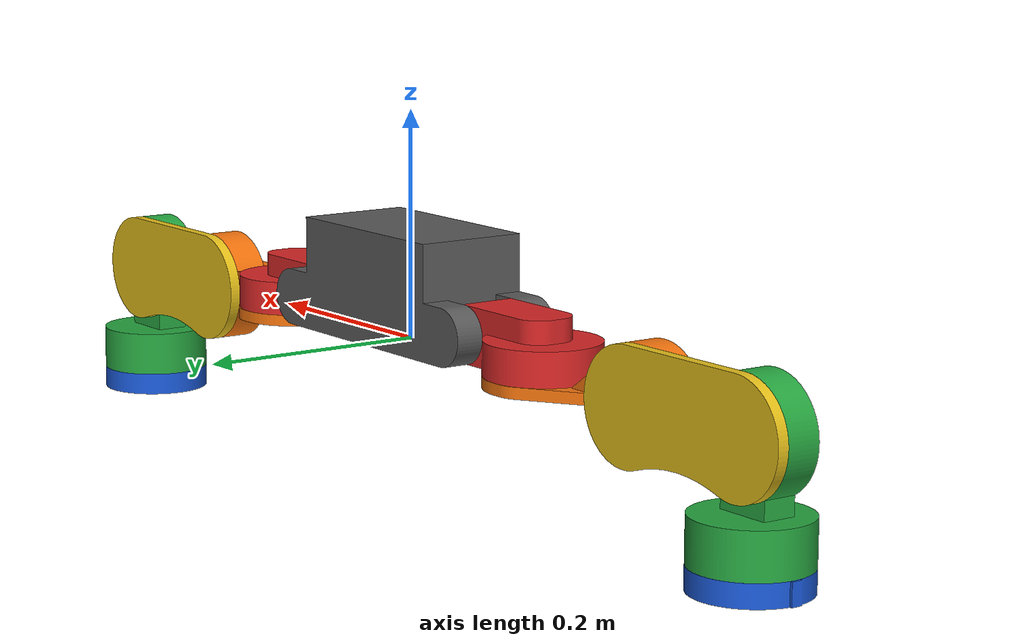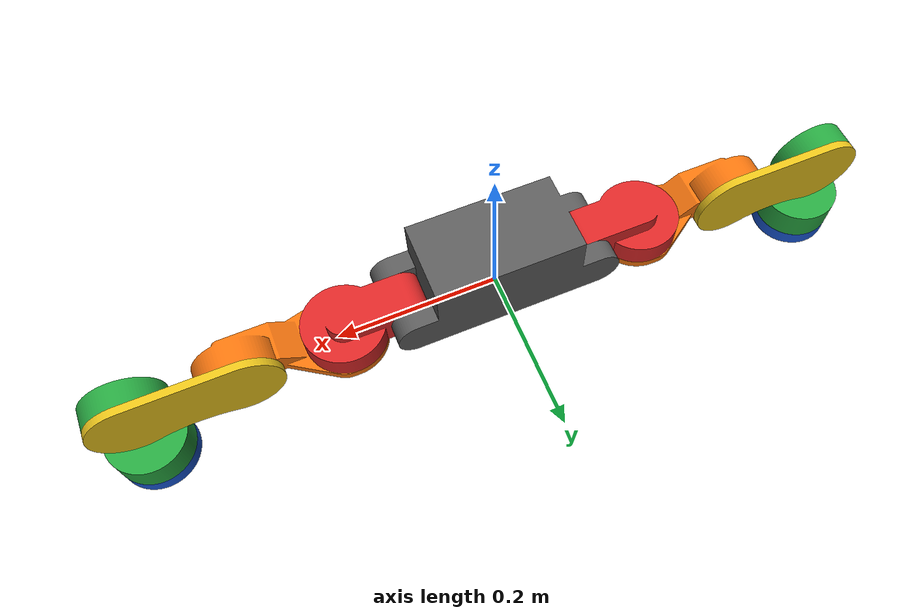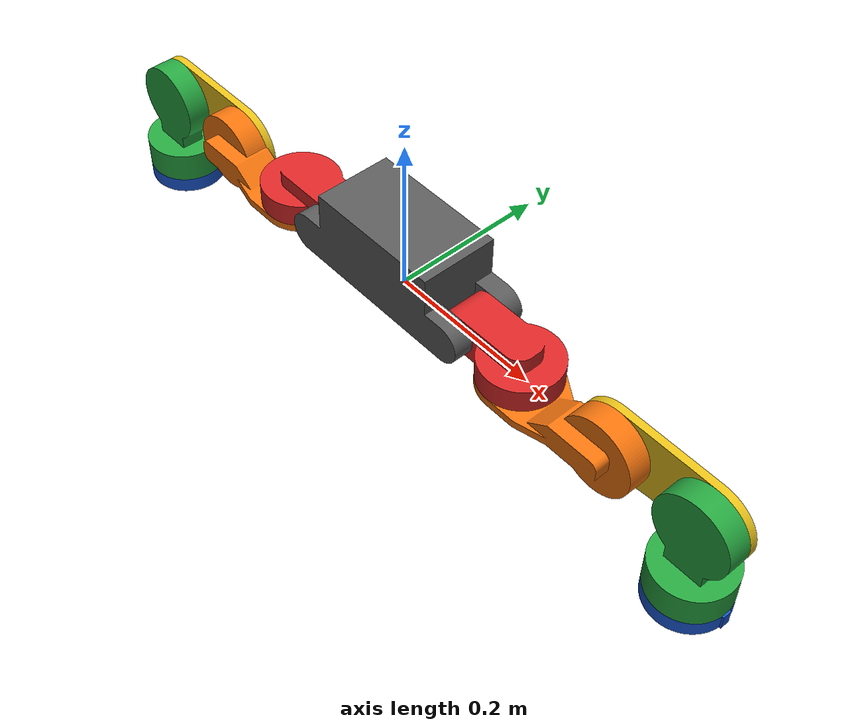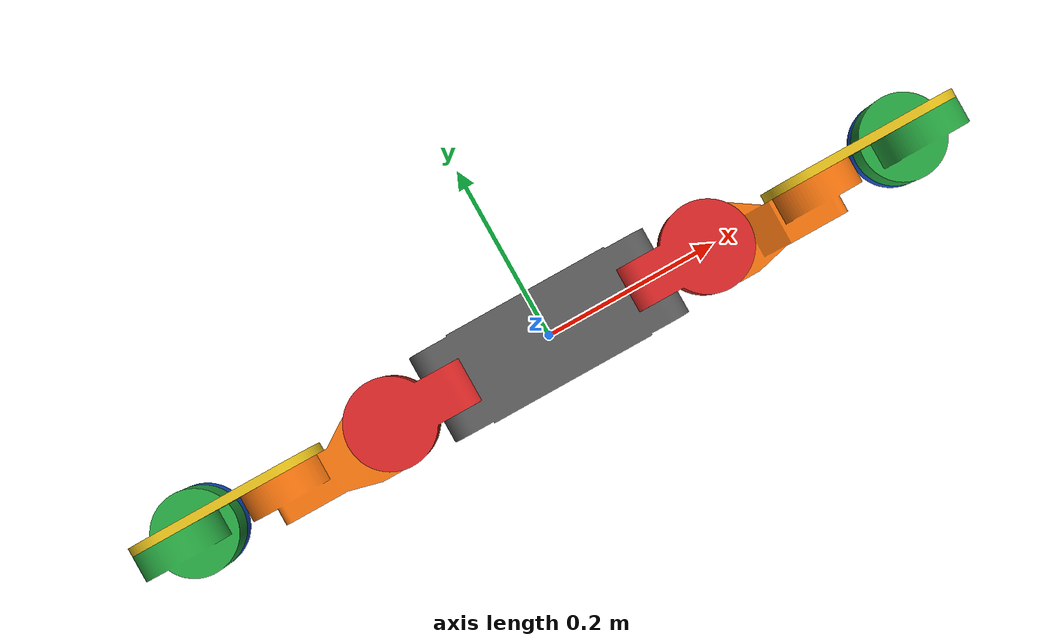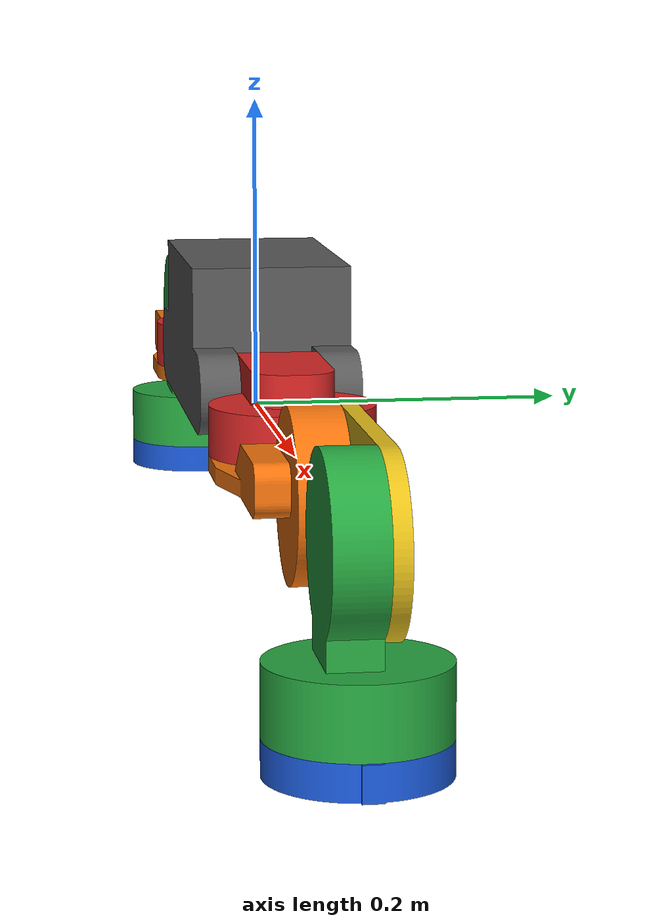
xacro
<?xml version="1.0"?>
<robot xmlns:xacro="http://www.ros.org/wiki/xacro" name="ROBOT_A">
    <xacro:arg name="initial_positions_file" default="initial_positions.yaml" />

    <!-- Import ROBOT_A urdf file -->
    <xacro:include filename="$(find asow_hw_description)/urdf/robot_a.urdf" />

    <!-- Import control_xacro -->
    <xacro:include filename="ROBOT_A.ros2_control.xacro" />

    <xacro:ROBOT_A_ros2_control name="FakeSystem" initial_positions_file="$(arg initial_positions_file)"/>

</robot>

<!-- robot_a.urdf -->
<robot name="ROBOT_A">
    <link name="base_link-v1">
        <inertial>
            <origin xyz="-3.596307012397224e-17 8.99076753099306e-18 0.047242270246655026" rpy="0.0 0.0 0.0" />
            <mass value="15.881921947833751" />
            <inertia ixx="0.02740389878447569" iyy="0.07377866036250164" izz="0.07503453392587439" ixy="-5.135190812746843e-33" iyz="1.0341286076480536e-18" ixz="-2.6983021339128172e-17" />
        </inertial>
        <visual name="base_link-v1_visual">
            <origin xyz="0.0 0.0 0.0" rpy="0.0 0.0 0.0" />
            <geometry>
                <mesh filename="package://asow_hw_description/meshes/base_link-v1.stl" scale="0.001 0.001 0.001" />
            </geometry>
            <material name="base_gray">
                <color rgba="0.35 0.35 0.35 1.0" />
            </material>
        </visual>
        <collision name="base_link-v1_collision">
            <origin xyz="0.0 0.0 0.0" rpy="0.0 0.0 0.0" />
            <geometry>
                <mesh filename="package://asow_hw_description/meshes/base_link-v1.stl" scale="0.001 0.001 0.001" />
            </geometry>
        </collision>
    </link>
    <link name="link_L_1-v1">
        <inertial>
            <origin xyz="-0.05253571632269832 -0.0033336910462764503 0.02499999999999999" rpy="0.0 -0.0 0.0" />
            <mass value="3.2736646506680445" />
            <inertia ixx="0.0020400762789989143" iyy="0.0061380158115020705" izz="0.005276307678153347" ixy="-0.0003628132859911648" iyz="-7.734366831151867e-19" ixz="-2.5868058713368473e-18" />
        </inertial>
        <visual name="link_L_1-v1_visual">
            <origin xyz="0.115 -0.025 0.025" rpy="-1.5707963267948966 -0.0 0.0" />
            <geometry>
                <mesh filename="package://asow_hw_description/meshes/link_L_1-v1.stl" scale="0.001 0.001 0.001" />
            </geometry>
            <material name="pair_1_red">
                <color rgba="0.85 0.15 0.15 1.0" />
            </material>
        </visual>
        <collision name="link_L_1-v1_collision">
            <origin xyz="0.115 -0.025 0.025" rpy="-1.5707963267948966 -0.0 0.0" />
            <geometry>
                <mesh filename="package://asow_hw_description/meshes/link_L_1-v1.stl" scale="0.001 0.001 0.001" />
            </geometry>
        </collision>
    </link>
    <link name="link_L_2-v1">
        <inertial>
            <origin xyz="-0.09566069346579405 -0.007703627484511559 -0.0004539395052395708" rpy="0.0 -0.0 0.0" />
            <mass value="3.118751651857192" />
            <inertia ixx="0.0021196297328528913" iyy="0.01125088261813123" izz="0.010916497110448065" ixy="-0.0003282241890858453" iyz="6.047609300765807e-05" ixz="0.0003456377415323876" />
        </inertial>
        <visual name="link_L_2-v1_visual">
            <origin xyz="0.19 0.0 0.0" rpy="0.0 -0.0 0.0" />
            <geometry>
                <mesh filename="package://asow_hw_description/meshes/link_L_2-v1.stl" scale="0.001 0.001 0.001" />
            </geometry>
            <material name="pair_2_orange">
                <color rgba="0.95 0.45 0.05 1.0" />
            </material>
        </visual>
        <collision name="link_L_2-v1_collision">
            <origin xyz="0.19 0.0 0.0" rpy="0.0 -0.0 0.0" />
            <geometry>
                <mesh filename="package://asow_hw_description/meshes/link_L_2-v1.stl" scale="0.001 0.001 0.001" />
            </geometry>
        </collision>
    </link>
    <link name="link_L_3-v1">
        <inertial>
            <origin xyz="-0.06500000000000007 -0.0018839898977644368 0.005000000000000003" rpy="0.0 -0.0 0.0" />
            <mass value="1.5722002984630519" />
            <inertia ixx="0.001107428869243225" iyy="0.006098519565284705" izz="0.007179745096220214" ixy="8.673617379884035e-19" iyz="-6.776263578034403e-21" ixz="-1.734723475976807e-18" />
        </inertial>
        <visual name="link_L_3-v1_visual">
            <origin xyz="0.32 0.0 -0.01" rpy="1.5707963267948966 -0.0 0.0" />
            <geometry>
                <mesh filename="package://asow_hw_description/meshes/link_L_3-v1.stl" scale="0.001 0.001 0.001" />
            </geometry>
            <material name="pair_3_yellow">
                <color rgba="0.90 0.75 0.10 1.0" />
            </material>
        </visual>
        <collision name="link_L_3-v1_collision">
            <origin xyz="0.32 0.0 -0.01" rpy="1.5707963267948966 -0.0 0.0" />
            <geometry>
                <mesh filename="package://asow_hw_description/meshes/link_L_3-v1.stl" scale="0.001 0.001 0.001" />
            </geometry>
        </collision>
    </link>
    <link name="link_L_4-v1">
        <inertial>
            <origin xyz="7.105427357601002e-17 -0.0459726775744445 0.012234673457824552" rpy="0.0 -0.0 0.0" />
            <mass value="4.459057900496437" />
            <inertia ixx="0.00997852464126306" iyy="0.004449906070845611" izz="0.010991696365970749" ixy="0.0" iyz="-0.00041958244565231355" ixz="-1.3877787807814457e-17" />
        </inertial>
        <visual name="link_L_4-v1_visual">
            <origin xyz="0.45 0.0 0.01" rpy="-1.5707963267948966 -0.0 0.0" />
            <geometry>
                <mesh filename="package://asow_hw_description/meshes/link_L_4-v1.stl" scale="0.001 0.001 0.001" />
            </geometry>
            <material name="pair_4_green">
                <color rgba="0.15 0.65 0.25 1.0" />
            </material>
        </visual>
        <collision name="link_L_4-v1_collision">
            <origin xyz="0.45 0.0 0.01" rpy="-1.5707963267948966 -0.0 0.0" />
            <geometry>
                <mesh filename="package://asow_hw_description/meshes/link_L_4-v1.stl" scale="0.001 0.001 0.001" />
            </geometry>
        </collision>
    </link>
    <link name="link_L_5-v1">
        <inertial>
            <origin xyz="-0.00013481796103853583 -2.324318480288175e-15 0.01" rpy="0.0 -0.0 0.0" />
            <mass value="1.236346146821069" />
            <inertia ixx="0.0008119116187459158" iyy="0.00082035579316736" izz="0.0015498443354586278" ixy="-7.654105120296088e-17" iyz="1.7848833522296184e-19" ixz="-6.938893903907228e-18" />
        </inertial>
        <visual name="link_L_5-v1_visual">
            <origin xyz="0.45 0.0 -0.1" rpy="3.141592653589793 -0.0 0.0" />
            <geometry>
                <mesh filename="package://asow_hw_description/meshes/link_L_5-v1.stl" scale="0.001 0.001 0.001" />
            </geometry>
            <material name="pair_5_blue">
                <color rgba="0.10 0.35 0.85 1.0" />
            </material>
        </visual>
        <collision name="link_L_5-v1_collision">
            <origin xyz="0.45 0.0 -0.1" rpy="3.141592653589793 -0.0 0.0" />
            <geometry>
                <mesh filename="package://asow_hw_description/meshes/link_L_5-v1.stl" scale="0.001 0.001 0.001" />
            </geometry>
        </collision>
    </link>
    <link name="link_R_1-v1">
        <inertial>
            <origin xyz="0.05253571632269829 -0.0033336910462764503 0.02499999999999999" rpy="0.0 -0.0 0.0" />
            <mass value="3.2736646506680445" />
            <inertia ixx="0.0020400762789989143" iyy="0.006138015811502084" izz="0.005276307678153347" ixy="0.00036281328599116307" iyz="-7.734366831151867e-19" ixz="-1.696914174013643e-18" />
        </inertial>
        <visual name="link_R_1-v1_visual">
            <origin xyz="-0.115 -0.025 0.025" rpy="-1.5707963267948966 -0.0 0.0" />
            <geometry>
                <mesh filename="package://asow_hw_description/meshes/link_R_1-v1.stl" scale="0.001 0.001 0.001" />
            </geometry>
            <material name="pair_1_red">
                <color rgba="0.85 0.15 0.15 1.0" />
            </material>
        </visual>
        <collision name="link_R_1-v1_collision">
            <origin xyz="-0.115 -0.025 0.025" rpy="-1.5707963267948966 -0.0 0.0" />
            <geometry>
                <mesh filename="package://asow_hw_description/meshes/link_R_1-v1.stl" scale="0.001 0.001 0.001" />
            </geometry>
        </collision>
    </link>
    <link name="link_R_2-v1">
        <inertial>
            <origin xyz="0.0956606934657939 -0.00770362748451158 -0.00045393950523957077" rpy="0.0 -0.0 0.0" />
            <mass value="3.1187516518571923" />
            <inertia ixx="0.0021196297328528856" iyy="0.011250882618131175" izz="0.01091649711044812" ixy="0.0003282241890858323" iyz="6.047609300765668e-05" ixz="-0.0003456377415324074" />
        </inertial>
        <visual name="link_R_2-v1_visual">
            <origin xyz="-0.19 0.0 0.0" rpy="0.0 -0.0 0.0" />
            <geometry>
                <mesh filename="package://asow_hw_description/meshes/link_R_2-v1.stl" scale="0.001 0.001 0.001" />
            </geometry>
            <material name="pair_2_orange">
                <color rgba="0.95 0.45 0.05 1.0" />
            </material>
        </visual>
        <collision name="link_R_2-v1_collision">
            <origin xyz="-0.19 0.0 0.0" rpy="0.0 -0.0 0.0" />
            <geometry>
                <mesh filename="package://asow_hw_description/meshes/link_R_2-v1.stl" scale="0.001 0.001 0.001" />
            </geometry>
        </collision>
    </link>
    <link name="link_R_3-v1">
        <inertial>
            <origin xyz="0.065 -0.0018839898977644368 0.005000000000000003" rpy="0.0 -0.0 0.0" />
            <mass value="1.5722002984630519" />
            <inertia ixx="0.0011074288692432236" iyy="0.006098519565284732" izz="0.007179745096220269" ixy="-8.673617379884035e-19" iyz="-6.776263578034403e-21" ixz="1.734723475976807e-18" />
        </inertial>
        <visual name="link_R_3-v1_visual">
            <origin xyz="-0.32 0.0 -0.01" rpy="1.5707963267948966 -0.0 0.0" />
            <geometry>
                <mesh filename="package://asow_hw_description/meshes/link_R_3-v1.stl" scale="0.001 0.001 0.001" />
            </geometry>
            <material name="pair_3_yellow">
                <color rgba="0.90 0.75 0.10 1.0" />
            </material>
        </visual>
        <collision name="link_R_3-v1_collision">
            <origin xyz="-0.32 0.0 -0.01" rpy="1.5707963267948966 -0.0 0.0" />
            <geometry>
                <mesh filename="package://asow_hw_description/meshes/link_R_3-v1.stl" scale="0.001 0.001 0.001" />
            </geometry>
        </collision>
    </link>
    <link name="link_R_4-v1">
        <inertial>
            <origin xyz="-7.105427357601002e-17 -0.04597267757444448 0.012234673457824545" rpy="0.0 -0.0 0.0" />
            <mass value="4.459057900496436" />
            <inertia ixx="0.009978524641263063" iyy="0.004449906070845722" izz="0.01099169636597086" ixy="1.3877787807814457e-17" iyz="-0.000419582445652316" ixz="-4.336808689942018e-18" />
        </inertial>
        <visual name="link_R_4-v1_visual">
            <origin xyz="-0.45 0.0 0.01" rpy="-1.5707963267948966 -0.0 0.0" />
            <geometry>
                <mesh filename="package://asow_hw_description/meshes/link_R_4-v1.stl" scale="0.001 0.001 0.001" />
            </geometry>
            <material name="pair_4_green">
                <color rgba="0.15 0.65 0.25 1.0" />
            </material>
        </visual>
        <collision name="link_R_4-v1_collision">
            <origin xyz="-0.45 0.0 0.01" rpy="-1.5707963267948966 -0.0 0.0" />
            <geometry>
                <mesh filename="package://asow_hw_description/meshes/link_R_4-v1.stl" scale="0.001 0.001 0.001" />
            </geometry>
        </collision>
    </link>
    <link name="link_R_5-v1">
        <inertial>
            <origin xyz="0.0001609173746943071 5.050265971612702e-17 -0.009999999999999894" rpy="0.0 -0.0 0.0" />
            <mass value="1.2369827189136964" />
            <inertia ixx="0.0008119517471491654" iyy="0.0008220137985852638" izz="0.001551500031140074" ixy="9.91738499737329e-19" iyz="8.031975085032235e-19" ixz="-6.938893903907228e-18" />
        </inertial>
        <visual name="link_R_5-v1_visual">
            <origin xyz="-0.45 0.0 0.1" rpy="0.0 -0.0 0.0" />
            <geometry>
                <mesh filename="package://asow_hw_description/meshes/link_R_5-v1.stl" scale="0.001 0.001 0.001" />
            </geometry>
            <material name="pair_5_blue">
                <color rgba="0.10 0.35 0.85 1.0" />
            </material>
        </visual>
        <collision name="link_R_5-v1_collision">
            <origin xyz="-0.45 0.0 0.1" rpy="0.0 -0.0 0.0" />
            <geometry>
                <mesh filename="package://asow_hw_description/meshes/link_R_5-v1.stl" scale="0.001 0.001 0.001" />
            </geometry>
        </collision>
    </link>
    <joint name="base_link-v1_linkL1" type="revolute">
        <origin xyz="-0.115 0.025 0.025" rpy="1.5707963267948966 -0.0 0.0" />
        <parent link="base_link-v1" />
        <child link="link_L_1-v1" />
        <axis xyz="0.0 0.0 1.0" />
        <limit lower="-1.570796" upper="1.570796" effort="1000000" velocity="1000000" />
    </joint>
    <joint name="link_L_1-v1_linkL2" type="revolute">
        <origin xyz="-0.075 -0.025 0.025" rpy="-1.5707963267948966 -0.0 0.0" />
        <parent link="link_L_1-v1" />
        <child link="link_L_2-v1" />
        <axis xyz="0.0 0.0 1.0" />
        <limit lower="-1.745329" upper="1.745329" effort="1000000" velocity="1000000" />
    </joint>
    <joint name="link_L_2-v1_linkL3" type="revolute">
        <origin xyz="-0.13 0.01 0.0" rpy="-1.5707963267948966 -0.0 0.0" />
        <parent link="link_L_2-v1" />
        <child link="link_L_3-v1" />
        <axis xyz="0.0 0.0 1.0" />
        <limit lower="-1.570796" upper="1.570796" effort="1000000" velocity="1000000" />
    </joint>
    <joint name="link_L_3-v1_linkL4" type="revolute">
        <origin xyz="-0.13 0.0 0.0" rpy="3.141592653589793 -0.0 0.0" />
        <parent link="link_L_3-v1" />
        <child link="link_L_4-v1" />
        <axis xyz="0.0 0.0 1.0" />
        <limit lower="-1.570796" upper="1.570796" effort="1000000" velocity="1000000" />
    </joint>
    <joint name="link_L_4-v1_linkL5" type="revolute">
        <origin xyz="0.0 -0.1 0.01" rpy="1.5707963267948966 -0.0 0.0" />
        <parent link="link_L_4-v1" />
        <child link="link_L_5-v1" />
        <axis xyz="0.0 0.0 1.0" />
        <limit lower="-3.141593" upper="0.0" effort="1000000" velocity="1000000" />
    </joint>
    <joint name="base_link-v1_linkR1" type="revolute">
        <origin xyz="0.115 0.025 0.025" rpy="1.5707963267948966 -0.0 0.0" />
        <parent link="base_link-v1" />
        <child link="link_R_1-v1" />
        <axis xyz="0.0 0.0 1.0" />
        <limit lower="-1.570796" upper="1.570796" effort="1000000" velocity="1000000" />
    </joint>
    <joint name="link_R_1-v1_linkR2" type="revolute">
        <origin xyz="0.075 -0.025 0.025" rpy="-1.5707963267948966 -0.0 0.0" />
        <parent link="link_R_1-v1" />
        <child link="link_R_2-v1" />
        <axis xyz="0.0 0.0 1.0" />
        <limit lower="-1.745329" upper="1.745329" effort="1000000" velocity="1000000" />
    </joint>
    <joint name="link_R_2-v1_linkR3" type="revolute">
        <origin xyz="0.13 0.01 0.0" rpy="-1.5707963267948966 -0.0 0.0" />
        <parent link="link_R_2-v1" />
        <child link="link_R_3-v1" />
        <axis xyz="0.0 0.0 1.0" />
        <limit lower="-1.570796" upper="1.570796" effort="1000000" velocity="1000000" />
    </joint>
    <joint name="link_R_3-v1_linkR4" type="revolute">
        <origin xyz="0.13 0.0 0.0" rpy="3.141592653589793 -0.0 0.0" />
        <parent link="link_R_3-v1" />
        <child link="link_R_4-v1" />
        <axis xyz="0.0 0.0 1.0" />
        <limit lower="-1.570796" upper="1.570796" effort="1000000" velocity="1000000" />
    </joint>
    <joint name="link_R_4-v1_linkR5" type="revolute">
        <origin xyz="0.0 -0.1 0.01" rpy="-1.5707963267948966 -0.0 0.0" />
        <parent link="link_R_4-v1" />
        <child link="link_R_5-v1" />
        <axis xyz="0.0 0.0 1.0" />
        <limit lower="-3.141593" upper="0.0" effort="1000000" velocity="1000000" />
    </joint>

     <!-- Left arm tool reference frame -->
    <link name="left_tool0" />

    <joint name="left_tool0_joint" type="fixed">
        <parent link="link_L_5-v1" />
        <child link="left_tool0" />
        <origin xyz="0 0 0" rpy="0 0 0" />
    </joint>

    <!-- Right arm tool reference frame -->
    <link name="right_tool0" />

    <joint name="right_tool0_joint" type="fixed">
        <parent link="link_R_5-v1" />
        <child link="right_tool0" />
        <origin xyz="0 0 0" rpy="0 0 0" />
    </joint>
</robot>
